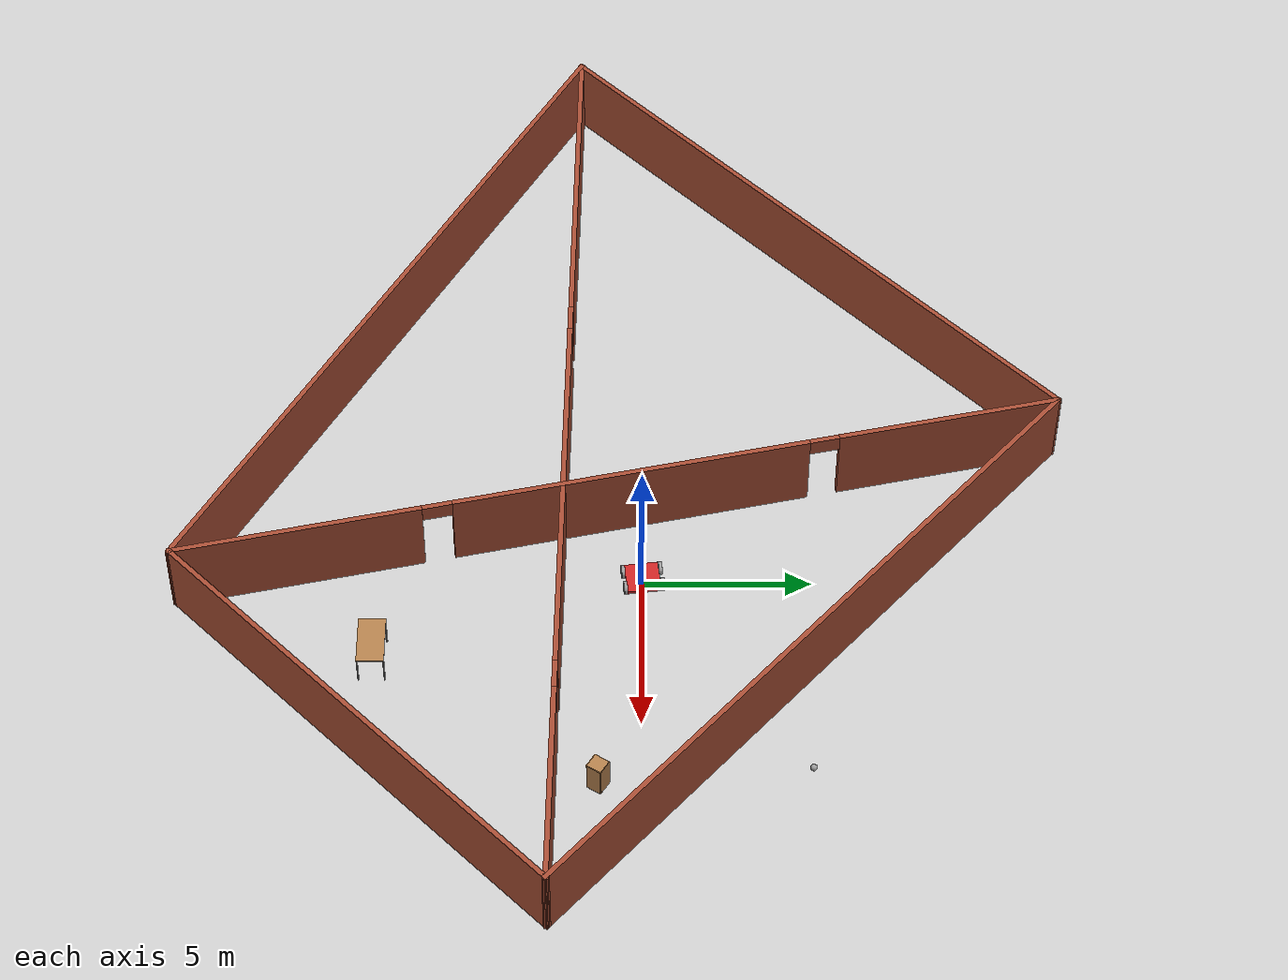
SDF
<sdf version="1.7">
 <world name="default">
  <model name="ground_plane">
   <static>1</static>
   <link name="link">
    <collision name="collision">
     <geometry><plane><normal>0 0 1</normal><size>100 100</size></plane></geometry>
     <surface>
      <contact><collide_bitmask>65535</collide_bitmask></contact>
      <friction><ode><mu>100</mu><mu2>50</mu2></ode></friction>
     </surface>
    </collision>
    <visual name="visual">
     <cast_shadows>0</cast_shadows>
     <geometry><plane><normal>0 0 1</normal><size>100 100</size></plane></geometry>
     <material>
      <script><uri>file://media/materials/scripts/gazebo.material</uri><name>Gazebo/Grey</name></script>
     </material>
    </visual>
   </link>
  </model>
  <model name="model">
   <link name="link_0">
    <inertial>
     <mass>1</mass>
     <inertia>
      <ixx>0.166667</ixx>
      <ixy>0</ixy>
      <ixz>0</ixz>
      <iyy>0.166667</iyy>
      <iyz>0</iyz>
      <izz>0.166667</izz>
     </inertia>
    </inertial>
    <visual name="visual">
     <geometry><box><size>1 1 0.1</size></box></geometry>
     <material>
      <lighting>1</lighting>
      <script><uri>file://media/materials/scripts/gazebo.material</uri><name>Gazebo/Red</name></script>
      <shader type="pixel"><normal_map>__default__</normal_map></shader>
      <ambient>0.3 0.3 0.3 1</ambient>
      <diffuse>0.7 0.7 0.7 1</diffuse>
      <specular>0.01 0.01 0.01 1</specular>
      <emissive>0 0 0 1</emissive>
     </material>
    </visual>
    <collision name="collision">
     <geometry><box><size>1 1 0.1</size></box></geometry>
     <surface>
      <friction>
       <ode><mu>1</mu><mu2>1</mu2><fdir1>0 0 0</fdir1><slip1>0</slip1><slip2>0</slip2></ode>
       <torsional>
        <coefficient>1</coefficient>
        <patch_radius>0</patch_radius>
        <surface_radius>0</surface_radius>
        <use_patch_radius>1</use_patch_radius>
        <ode><slip>0</slip></ode>
       </torsional>
      </friction>
      <bounce><restitution_coefficient>0</restitution_coefficient><threshold>1e+06</threshold></bounce>
      <contact>
       <collide_without_contact>0</collide_without_contact>
       <collide_without_contact_bitmask>1</collide_without_contact_bitmask>
       <collide_bitmask>1</collide_bitmask>
       <ode>
        <soft_cfm>0</soft_cfm>
        <soft_erp>0.2</soft_erp>
        <kp>1e+13</kp>
        <kd>1</kd>
        <max_vel>0.01</max_vel>
        <min_depth>0</min_depth>
       </ode>
       <bullet>
        <split_impulse>1</split_impulse>
        <split_impulse_penetration_threshold>-0.01</split_impulse_penetration_threshold>
        <soft_cfm>0</soft_cfm>
        <soft_erp>0.2</soft_erp>
        <kp>1e+13</kp>
        <kd>1</kd>
       </bullet>
      </contact>
     </surface>
    </collision>
   </link>
   <link name="link_2">
    <pose>0.3 -0.550019 0 1.5707 -0 0</pose>
    <inertial>
     <mass>1</mass>
     <inertia><ixx>0.145833</ixx><ixy>0</ixy><ixz>0</ixz><iyy>0.145833</iyy><iyz>0</iyz><izz>0.125</izz></inertia>
    </inertial>
    <visual name="visual">
     <geometry><cylinder><radius>0.2</radius><length>0.1</length></cylinder></geometry>
     <material>
      <lighting>1</lighting>
      <script><uri>file://media/materials/scripts/gazebo.material</uri><name>Gazebo/Grey</name></script>
      <shader type="pixel"><normal_map>__default__</normal_map></shader>
      <ambient>0.3 0.3 0.3 1</ambient>
      <diffuse>0.7 0.7 0.7 1</diffuse>
      <specular>0.01 0.01 0.01 1</specular>
      <emissive>0 0 0 1</emissive>
     </material>
    </visual>
    <collision name="collision">
     <geometry><cylinder><radius>0.2</radius><length>0.1</length></cylinder></geometry>
     <surface>
      <friction>
       <ode><mu>1</mu><mu2>1</mu2><fdir1>0 0 0</fdir1><slip1>0</slip1><slip2>0</slip2></ode>
       <torsional>
        <coefficient>1</coefficient>
        <patch_radius>0</patch_radius>
        <surface_radius>0</surface_radius>
        <use_patch_radius>1</use_patch_radius>
        <ode><slip>0</slip></ode>
       </torsional>
      </friction>
      <bounce><restitution_coefficient>0</restitution_coefficient><threshold>1e+06</threshold></bounce>
      <contact>
       <collide_without_contact>0</collide_without_contact>
       <collide_without_contact_bitmask>1</collide_without_contact_bitmask>
       <collide_bitmask>1</collide_bitmask>
       <ode>
        <soft_cfm>0</soft_cfm>
        <soft_erp>0.2</soft_erp>
        <kp>1e+13</kp>
        <kd>1</kd>
        <max_vel>0.01</max_vel>
        <min_depth>0</min_depth>
       </ode>
       <bullet>
        <split_impulse>1</split_impulse>
        <split_impulse_penetration_threshold>-0.01</split_impulse_penetration_threshold>
        <soft_cfm>0</soft_cfm>
        <soft_erp>0.2</soft_erp>
        <kp>1e+13</kp>
        <kd>1</kd>
       </bullet>
      </contact>
     </surface>
    </collision>
   </link>
   <link name="link_2_clone">
    <pose>-0.3 -0.550019 0 1.5707 -0 0</pose>
    <inertial>
     <mass>1</mass>
     <inertia><ixx>0.145833</ixx><ixy>0</ixy><ixz>0</ixz><iyy>0.145833</iyy><iyz>0</iyz><izz>0.125</izz></inertia>
    </inertial>
    <visual name="visual">
     <geometry><cylinder><radius>0.2</radius><length>0.1</length></cylinder></geometry>
     <material>
      <lighting>1</lighting>
      <script><uri>file://media/materials/scripts/gazebo.material</uri><name>Gazebo/Grey</name></script>
      <shader type="pixel"><normal_map>__default__</normal_map></shader>
      <ambient>0.3 0.3 0.3 1</ambient>
      <diffuse>0.7 0.7 0.7 1</diffuse>
      <specular>0.01 0.01 0.01 1</specular>
      <emissive>0 0 0 1</emissive>
     </material>
    </visual>
    <collision name="collision">
     <geometry><cylinder><radius>0.2</radius><length>0.1</length></cylinder></geometry>
     <surface>
      <friction>
       <ode><mu>1</mu><mu2>1</mu2><fdir1>0 0 0</fdir1><slip1>0</slip1><slip2>0</slip2></ode>
       <torsional>
        <coefficient>1</coefficient>
        <patch_radius>0</patch_radius>
        <surface_radius>0</surface_radius>
        <use_patch_radius>1</use_patch_radius>
        <ode><slip>0</slip></ode>
       </torsional>
      </friction>
      <bounce><restitution_coefficient>0</restitution_coefficient><threshold>1e+06</threshold></bounce>
      <contact>
       <collide_without_contact>0</collide_without_contact>
       <collide_without_contact_bitmask>1</collide_without_contact_bitmask>
       <collide_bitmask>1</collide_bitmask>
       <ode>
        <soft_cfm>0</soft_cfm>
        <soft_erp>0.2</soft_erp>
        <kp>1e+13</kp>
        <kd>1</kd>
        <max_vel>0.01</max_vel>
        <min_depth>0</min_depth>
       </ode>
       <bullet>
        <split_impulse>1</split_impulse>
        <split_impulse_penetration_threshold>-0.01</split_impulse_penetration_threshold>
        <soft_cfm>0</soft_cfm>
        <soft_erp>0.2</soft_erp>
        <kp>1e+13</kp>
        <kd>1</kd>
       </bullet>
      </contact>
     </surface>
    </collision>
   </link>
   <link name="link_2_clone_0">
    <pose>-0.3 0.550019 0 1.5707 -0 0</pose>
    <inertial>
     <mass>1</mass>
     <inertia><ixx>0.145833</ixx><ixy>0</ixy><ixz>0</ixz><iyy>0.145833</iyy><iyz>0</iyz><izz>0.125</izz></inertia>
    </inertial>
    <visual name="visual">
     <geometry><cylinder><radius>0.2</radius><length>0.1</length></cylinder></geometry>
     <material>
      <lighting>1</lighting>
      <script><uri>file://media/materials/scripts/gazebo.material</uri><name>Gazebo/Grey</name></script>
      <shader type="pixel"><normal_map>__default__</normal_map></shader>
      <ambient>0.3 0.3 0.3 1</ambient>
      <diffuse>0.7 0.7 0.7 1</diffuse>
      <specular>0.01 0.01 0.01 1</specular>
      <emissive>0 0 0 1</emissive>
     </material>
    </visual>
    <collision name="collision">
     <geometry><cylinder><radius>0.2</radius><length>0.1</length></cylinder></geometry>
     <surface>
      <friction>
       <ode><mu>1</mu><mu2>1</mu2><fdir1>0 0 0</fdir1><slip1>0</slip1><slip2>0</slip2></ode>
       <torsional>
        <coefficient>1</coefficient>
        <patch_radius>0</patch_radius>
        <surface_radius>0</surface_radius>
        <use_patch_radius>1</use_patch_radius>
        <ode><slip>0</slip></ode>
       </torsional>
      </friction>
      <bounce><restitution_coefficient>0</restitution_coefficient><threshold>1e+06</threshold></bounce>
      <contact>
       <collide_without_contact>0</collide_without_contact>
       <collide_without_contact_bitmask>1</collide_without_contact_bitmask>
       <collide_bitmask>1</collide_bitmask>
       <ode>
        <soft_cfm>0</soft_cfm>
        <soft_erp>0.2</soft_erp>
        <kp>1e+13</kp>
        <kd>1</kd>
        <max_vel>0.01</max_vel>
        <min_depth>0</min_depth>
       </ode>
       <bullet>
        <split_impulse>1</split_impulse>
        <split_impulse_penetration_threshold>-0.01</split_impulse_penetration_threshold>
        <soft_cfm>0</soft_cfm>
        <soft_erp>0.2</soft_erp>
        <kp>1e+13</kp>
        <kd>1</kd>
       </bullet>
      </contact>
     </surface>
    </collision>
   </link>
   <link name="link_2_clone_1">
    <pose>0.3 0.550019 0 1.5707 -0 0</pose>
    <inertial>
     <mass>1</mass>
     <inertia><ixx>0.145833</ixx><ixy>0</ixy><ixz>0</ixz><iyy>0.145833</iyy><iyz>0</iyz><izz>0.125</izz></inertia>
    </inertial>
    <visual name="visual">
     <geometry><cylinder><radius>0.2</radius><length>0.1</length></cylinder></geometry>
     <material>
      <lighting>1</lighting>
      <script><uri>file://media/materials/scripts/gazebo.material</uri><name>Gazebo/Grey</name></script>
      <shader type="pixel"><normal_map>__default__</normal_map></shader>
      <ambient>0.3 0.3 0.3 1</ambient>
      <diffuse>0.7 0.7 0.7 1</diffuse>
      <specular>0.01 0.01 0.01 1</specular>
      <emissive>0 0 0 1</emissive>
     </material>
    </visual>
    <collision name="collision">
     <geometry><cylinder><radius>0.2</radius><length>0.1</length></cylinder></geometry>
     <surface>
      <friction>
       <ode><mu>1</mu><mu2>1</mu2><fdir1>0 0 0</fdir1><slip1>0</slip1><slip2>0</slip2></ode>
       <torsional>
        <coefficient>1</coefficient>
        <patch_radius>0</patch_radius>
        <surface_radius>0</surface_radius>
        <use_patch_radius>1</use_patch_radius>
        <ode><slip>0</slip></ode>
       </torsional>
      </friction>
      <bounce><restitution_coefficient>0</restitution_coefficient><threshold>1e+06</threshold></bounce>
      <contact>
       <collide_without_contact>0</collide_without_contact>
       <collide_without_contact_bitmask>1</collide_without_contact_bitmask>
       <collide_bitmask>1</collide_bitmask>
       <ode>
        <soft_cfm>0</soft_cfm>
        <soft_erp>0.2</soft_erp>
        <kp>1e+13</kp>
        <kd>1</kd>
        <max_vel>0.01</max_vel>
        <min_depth>0</min_depth>
       </ode>
       <bullet>
        <split_impulse>1</split_impulse>
        <split_impulse_penetration_threshold>-0.01</split_impulse_penetration_threshold>
        <soft_cfm>0</soft_cfm>
        <soft_erp>0.2</soft_erp>
        <kp>1e+13</kp>
        <kd>1</kd>
       </bullet>
      </contact>
     </surface>
    </collision>
   </link>
   <joint name="link_0_JOINT_0" type="revolute">
    <parent>link_0</parent>
    <child>link_2</child>
    <axis>
     <xyz>0 0 1</xyz>
     <limit>
      <lower>-1.79769e+308</lower>
      <upper>1.79769e+308</upper>
      <effort>-1</effort>
      <velocity>-1</velocity>
     </limit>
     <dynamics>
      <spring_reference>0</spring_reference>
      <spring_stiffness>0</spring_stiffness>
      <damping>0</damping>
     </dynamics>
    </axis>
    <physics>
     <ode><limit><cfm>0</cfm><erp>0.2</erp></limit><suspension><cfm>0</cfm><erp>0.2</erp></suspension></ode>
    </physics>
   </joint>
   <joint name="link_0_JOINT_1" type="revolute">
    <parent>link_0</parent>
    <child>link_2_clone_1</child>
    <axis>
     <xyz>0 0 1</xyz>
     <limit>
      <lower>-1.79769e+308</lower>
      <upper>1.79769e+308</upper>
      <effort>-1</effort>
      <velocity>-1</velocity>
     </limit>
     <dynamics>
      <spring_reference>0</spring_reference>
      <spring_stiffness>0</spring_stiffness>
      <damping>0</damping>
     </dynamics>
    </axis>
    <physics>
     <ode><limit><cfm>0</cfm><erp>0.2</erp></limit><suspension><cfm>0</cfm><erp>0.2</erp></suspension></ode>
    </physics>
   </joint>
   <joint name="link_0_JOINT_2" type="revolute">
    <parent>link_0</parent>
    <child>link_2_clone</child>
    <axis>
     <xyz>1 0 0</xyz>
     <limit>
      <lower>-1.79769e+308</lower>
      <upper>1.79769e+308</upper>
      <effort>-1</effort>
      <velocity>-1</velocity>
     </limit>
     <dynamics>
      <spring_reference>0</spring_reference>
      <spring_stiffness>0</spring_stiffness>
      <damping>0</damping>
     </dynamics>
    </axis>
    <physics>
     <ode><limit><cfm>0</cfm><erp>0.2</erp></limit><suspension><cfm>0</cfm><erp>0.2</erp></suspension></ode>
    </physics>
   </joint>
   <joint name="link_0_JOINT_3" type="revolute">
    <parent>link_0</parent>
    <child>link_2_clone_0</child>
    <axis>
     <xyz>0 0 1</xyz>
     <limit>
      <lower>-1.79769e+308</lower>
      <upper>1.79769e+308</upper>
      <effort>-1</effort>
      <velocity>-1</velocity>
     </limit>
     <dynamics>
      <spring_reference>0</spring_reference>
      <spring_stiffness>0</spring_stiffness>
      <damping>0</damping>
     </dynamics>
    </axis>
    <physics>
     <ode><limit><cfm>0</cfm><erp>0.2</erp></limit><suspension><cfm>0</cfm><erp>0.2</erp></suspension></ode>
    </physics>
   </joint>
   <static>0</static>
   <pose>-0.078493 0.033847 0.200003 1e-06 -7e-06 0.129225</pose>
  </model>
  <model name="building">
   <pose>-3.84273 -0.58664 0 0 -0 0</pose>
   <link name="Wall_1">
    <collision name="Wall_1_Collision">
     <geometry><box><size>20.5 0.15 2.5</size></box></geometry>
     <pose>0 0 1.25 0 -0 0</pose>
    </collision>
    <visual name="Wall_1_Visual">
     <pose>0 0 1.25 0 -0 0</pose>
     <geometry><box><size>20.5 0.15 2.5</size></box></geometry>
     <material>
      <script><uri>file://media/materials/scripts/gazebo.material</uri><name>Gazebo/Bricks</name></script>
      <ambient>1 1 1 1</ambient>
     </material>
     <meta><layer>0</layer></meta>
    </visual>
    <pose>-8.43147 5.8375 0 0 0 -2.35619</pose>
   </link>
   <link name="Wall_2">
    <collision name="Wall_2_Collision">
     <geometry><box><size>23.5 0.15 2.5</size></box></geometry>
     <pose>0 0 1.25 0 -0 0</pose>
    </collision>
    <visual name="Wall_2_Visual">
     <pose>0 0 1.25 0 -0 0</pose>
     <geometry><box><size>23.5 0.15 2.5</size></box></geometry>
     <material>
      <script><uri>file://media/materials/scripts/gazebo.material</uri><name>Gazebo/Bricks</name></script>
      <ambient>1 1 1 1</ambient>
     </material>
     <meta><layer>0</layer></meta>
    </visual>
    <pose>-5.51543 -7.19481 0 0 0 -0.523599</pose>
   </link>
   <link name="Wall_3">
    <collision name="Wall_3_Collision">
     <geometry><box><size>15.75 0.15 2.5</size></box></geometry>
     <pose>0 0 1.25 0 -0 0</pose>
    </collision>
    <visual name="Wall_3_Visual">
     <pose>0 0 1.25 0 -0 0</pose>
     <geometry><box><size>15.75 0.15 2.5</size></box></geometry>
     <material>
      <script><uri>file://media/materials/scripts/gazebo.material</uri><name>Gazebo/Bricks</name></script>
      <ambient>1 1 1 1</ambient>
     </material>
     <meta><layer>0</layer></meta>
    </visual>
    <pose>10.1108 -7.51688 0 0 -0 0.785398</pose>
   </link>
   <link name="Wall_4">
    <collision name="Wall_4_Collision">
     <geometry><box><size>22.7414 0.15 2.5</size></box></geometry>
     <pose>0 0 1.25 0 -0 0</pose>
    </collision>
    <visual name="Wall_4_Visual">
     <pose>0 0 1.25 0 -0 0</pose>
     <geometry><box><size>22.7414 0.15 2.5</size></box></geometry>
     <material>
      <script><uri>file://media/materials/scripts/gazebo.material</uri><name>Gazebo/Bricks</name></script>
      <ambient>1 1 1 1</ambient>
     </material>
     <meta><layer>0</layer></meta>
    </visual>
    <pose>7.19481 5.51543 0 0 -0 2.41348</pose>
   </link>
   <link name="Wall_5">
    <pose>1.67938 0 0 0 0 -1.35067</pose>
    <visual name="Wall_5_Visual_0">
     <pose>-10.0114 0 1.25 0 -0 0</pose>
     <geometry><box><size>6.83637 0.15 2.5</size></box></geometry>
     <material>
      <script><uri>file://media/materials/scripts/gazebo.material</uri><name>Gazebo/Bricks</name></script>
      <ambient>1 1 1 1</ambient>
     </material>
     <meta><layer>0</layer></meta>
    </visual>
    <collision name="Wall_5_Collision_0">
     <geometry><box><size>6.83637 0.15 2.5</size></box></geometry>
     <pose>-10.0114 0 1.25 0 -0 0</pose>
    </collision>
    <visual name="Wall_5_Visual_1">
     <pose>-0.313618 0 1.25 0 -0 0</pose>
     <geometry><box><size>10.7591 0.15 2.5</size></box></geometry>
     <material>
      <script><uri>file://media/materials/scripts/gazebo.material</uri><name>Gazebo/Bricks</name></script>
      <ambient>1 1 1 1</ambient>
     </material>
     <meta><layer>0</layer></meta>
    </visual>
    <collision name="Wall_5_Collision_1">
     <geometry><box><size>10.7591 0.15 2.5</size></box></geometry>
     <pose>-0.313618 0 1.25 0 -0 0</pose>
    </collision>
    <visual name="Wall_5_Visual_2">
     <pose>9.69776 0 1.25 0 -0 0</pose>
     <geometry><box><size>7.46361 0.15 2.5</size></box></geometry>
     <material>
      <script><uri>file://media/materials/scripts/gazebo.material</uri><name>Gazebo/Bricks</name></script>
      <ambient>1 1 1 1</ambient>
     </material>
     <meta><layer>0</layer></meta>
    </visual>
    <collision name="Wall_5_Collision_2">
     <geometry><box><size>7.46361 0.15 2.5</size></box></geometry>
     <pose>9.69776 0 1.25 0 -0 0</pose>
    </collision>
    <visual name="Wall_5_Visual_3">
     <pose>-6.14319 0 2.25 0 -0 0</pose>
     <geometry><box><size>0.9 0.15 0.5</size></box></geometry>
     <material>
      <script><uri>file://media/materials/scripts/gazebo.material</uri><name>Gazebo/Bricks</name></script>
      <ambient>1 1 1 1</ambient>
     </material>
     <meta><layer>0</layer></meta>
    </visual>
    <collision name="Wall_5_Collision_3">
     <geometry><box><size>0.9 0.15 0.5</size></box></geometry>
     <pose>-6.14319 0 2.25 0 -0 0</pose>
    </collision>
    <visual name="Wall_5_Visual_4">
     <pose>5.51595 0 2.25 0 -0 0</pose>
     <geometry><box><size>0.9 0.15 0.5</size></box></geometry>
     <material>
      <script><uri>file://media/materials/scripts/gazebo.material</uri><name>Gazebo/Bricks</name></script>
      <ambient>1 1 1 1</ambient>
     </material>
     <meta><layer>0</layer></meta>
    </visual>
    <collision name="Wall_5_Collision_4">
     <geometry><box><size>0.9 0.15 0.5</size></box></geometry>
     <pose>5.51595 0 2.25 0 -0 0</pose>
    </collision>
   </link>
   <link name="Wall_7">
    <pose>1e-06 -1.67938 0 0 0 -0.020608</pose>
    <visual name="Wall_7_Visual_0">
     <pose>-10.3358 0 1.25 0 -0 0</pose>
     <geometry><box><size>10.7375 0.15 2.5</size></box></geometry>
     <material>
      <script><uri>file://media/materials/scripts/gazebo.material</uri><name>Gazebo/Bricks</name></script>
      <ambient>1 1 1 1</ambient>
     </material>
     <meta><layer>0</layer></meta>
    </visual>
    <collision name="Wall_7_Collision_0">
     <geometry><box><size>10.7375 0.15 2.5</size></box></geometry>
     <pose>-10.3358 0 1.25 0 -0 0</pose>
    </collision>
    <visual name="Wall_7_Visual_1">
     <pose>2.20987 0 1.25 0 -0 0</pose>
     <geometry><box><size>12.5539 0.15 2.5</size></box></geometry>
     <material>
      <script><uri>file://media/materials/scripts/gazebo.material</uri><name>Gazebo/Bricks</name></script>
      <ambient>1 1 1 1</ambient>
     </material>
     <meta><layer>0</layer></meta>
    </visual>
    <collision name="Wall_7_Collision_1">
     <geometry><box><size>12.5539 0.15 2.5</size></box></geometry>
     <pose>2.20987 0 1.25 0 -0 0</pose>
    </collision>
    <visual name="Wall_7_Visual_2">
     <pose>12.5457 0 1.25 0 -0 0</pose>
     <geometry><box><size>6.31776 0.15 2.5</size></box></geometry>
     <material>
      <script><uri>file://media/materials/scripts/gazebo.material</uri><name>Gazebo/Bricks</name></script>
      <ambient>1 1 1 1</ambient>
     </material>
     <meta><layer>0</layer></meta>
    </visual>
    <collision name="Wall_7_Collision_2">
     <geometry><box><size>6.31776 0.15 2.5</size></box></geometry>
     <pose>12.5457 0 1.25 0 -0 0</pose>
    </collision>
    <visual name="Wall_7_Visual_3">
     <pose>-4.51709 0 2.25 0 -0 0</pose>
     <geometry><box><size>0.9 0.15 0.5</size></box></geometry>
     <material>
      <script><uri>file://media/materials/scripts/gazebo.material</uri><name>Gazebo/Bricks</name></script>
      <ambient>1 1 1 1</ambient>
     </material>
     <meta><layer>0</layer></meta>
    </visual>
    <collision name="Wall_7_Collision_3">
     <geometry><box><size>0.9 0.15 0.5</size></box></geometry>
     <pose>-4.51709 0 2.25 0 -0 0</pose>
    </collision>
    <visual name="Wall_7_Visual_4">
     <pose>8.93684 0 2.25 0 -0 0</pose>
     <geometry><box><size>0.9 0.15 0.5</size></box></geometry>
     <material>
      <script><uri>file://media/materials/scripts/gazebo.material</uri><name>Gazebo/Bricks</name></script>
      <ambient>1 1 1 1</ambient>
     </material>
     <meta><layer>0</layer></meta>
    </visual>
    <collision name="Wall_7_Collision_4">
     <geometry><box><size>0.9 0.15 0.5</size></box></geometry>
     <pose>8.93684 0 2.25 0 -0 0</pose>
    </collision>
   </link>
   <static>1</static>
  </model>
  <model name="table_0">
   <static>1</static>
   <link name="link">
    <collision name="surface">
     <pose>0 0 1 0 -0 0</pose>
     <geometry><box><size>1.5 0.8 0.03</size></box></geometry>
     <surface><friction><ode><mu>0.6</mu><mu2>0.6</mu2></ode></friction></surface>
    </collision>
    <visual name="visual1">
     <pose>0 0 1 0 -0 0</pose>
     <geometry><box><size>1.5 0.8 0.03</size></box></geometry>
     <material>
      <script><uri>file://media/materials/scripts/gazebo.material</uri><name>Gazebo/Wood</name></script>
     </material>
    </visual>
    <collision name="front_left_leg">
     <pose>0.68 0.38 0.5 0 -0 0</pose>
     <geometry><cylinder><radius>0.02</radius><length>1</length></cylinder></geometry>
    </collision>
    <visual name="front_left_leg">
     <pose>0.68 0.38 0.5 0 -0 0</pose>
     <geometry><cylinder><radius>0.02</radius><length>1</length></cylinder></geometry>
     <material>
      <script><uri>file://media/materials/scripts/gazebo.material</uri><name>Gazebo/Grey</name></script>
     </material>
    </visual>
    <collision name="front_right_leg">
     <pose>0.68 -0.38 0.5 0 -0 0</pose>
     <geometry><cylinder><radius>0.02</radius><length>1</length></cylinder></geometry>
    </collision>
    <visual name="front_right_leg">
     <pose>0.68 -0.38 0.5 0 -0 0</pose>
     <geometry><cylinder><radius>0.02</radius><length>1</length></cylinder></geometry>
     <material>
      <script><uri>file://media/materials/scripts/gazebo.material</uri><name>Gazebo/Grey</name></script>
     </material>
    </visual>
    <collision name="back_right_leg">
     <pose>-0.68 -0.38 0.5 0 -0 0</pose>
     <geometry><cylinder><radius>0.02</radius><length>1</length></cylinder></geometry>
    </collision>
    <visual name="back_right_leg">
     <pose>-0.68 -0.38 0.5 0 -0 0</pose>
     <geometry><cylinder><radius>0.02</radius><length>1</length></cylinder></geometry>
     <material>
      <script><uri>file://media/materials/scripts/gazebo.material</uri><name>Gazebo/Grey</name></script>
     </material>
    </visual>
    <collision name="back_left_leg">
     <pose>-0.68 0.38 0.5 0 -0 0</pose>
     <geometry><cylinder><radius>0.02</radius><length>1</length></cylinder></geometry>
    </collision>
    <visual name="back_left_leg">
     <pose>-0.68 0.38 0.5 0 -0 0</pose>
     <geometry><cylinder><radius>0.02</radius><length>1</length></cylinder></geometry>
     <material>
      <script><uri>file://media/materials/scripts/gazebo.material</uri><name>Gazebo/Grey</name></script>
     </material>
    </visual>
   </link>
   <pose>2.82796 -7.77745 0 0 -0 0</pose>
  </model>
  <model name="cabinet">
   <static>1</static>
   <link name="cabinet_bottom_plate">
    <inertial>
     <pose>0 0 -1 0 -0 0</pose>
     <inertia><ixx>2.05</ixx><ixy>0</ixy><ixz>0</ixz><iyy>2.05</iyy><iyz>0</iyz><izz>2.05</izz></inertia>
     <mass>25</mass>
    </inertial>
    <collision name="cabinet_bottom_plate_geom">
     <pose>0 0 0.01 0 -0 0</pose>
     <geometry><box><size>0.45 0.45 0.02</size></box></geometry>
    </collision>
    <visual name="cabinet_bottom_plate_geom_visual">
     <pose>0 0 0.01 0 -0 0</pose>
     <geometry><box><size>0.45 0.45 0.02</size></box></geometry>
     <material>
      <script><uri>file://media/materials/scripts/gazebo.material</uri><name>Gazebo/Wood</name></script>
     </material>
    </visual>
    <collision name="cabinet_bottom_plate_geom_cabinet_back_plate">
     <pose>0.235 0 0.51 0 -0 0</pose>
     <geometry><box><size>0.02 0.45 1.02</size></box></geometry>
    </collision>
    <visual name="cabinet_bottom_plate_geom_cabinet_back_plate_visual">
     <pose>0.235 0 0.51 0 -0 0</pose>
     <geometry><box><size>0.02 0.45 1.02</size></box></geometry>
     <material>
      <script><uri>file://media/materials/scripts/gazebo.material</uri><name>Gazebo/Wood</name></script>
     </material>
    </visual>
    <collision name="cabinet_bottom_plate_geom_cabinet_left_plate">
     <pose>0 0.235 0.51 0 -0 0</pose>
     <geometry><box><size>0.45 0.02 1.02</size></box></geometry>
    </collision>
    <visual name="cabinet_bottom_plate_geom_cabinet_left_plate_visual">
     <pose>0 0.235 0.51 0 -0 0</pose>
     <geometry><box><size>0.45 0.02 1.02</size></box></geometry>
     <material>
      <script><uri>file://media/materials/scripts/gazebo.material</uri><name>Gazebo/Wood</name></script>
     </material>
    </visual>
    <collision name="cabinet_bottom_plate_geom_cabinet_middle_plate">
     <pose>0 0 0.51 0 -0 0</pose>
     <geometry><box><size>0.45 0.45 0.02</size></box></geometry>
    </collision>
    <visual name="cabinet_bottom_plate_geom_cabinet_middle_plate_visual">
     <pose>0 0 0.51 0 -0 0</pose>
     <geometry><box><size>0.45 0.45 0.02</size></box></geometry>
     <material>
      <script><uri>file://media/materials/scripts/gazebo.material</uri><name>Gazebo/Wood</name></script>
     </material>
    </visual>
    <collision name="cabinet_bottom_plate_geom_cabinet_right_plate">
     <pose>0 -0.235 0.51 0 -0 0</pose>
     <geometry><box><size>0.45 0.02 1.02</size></box></geometry>
    </collision>
    <visual name="cabinet_bottom_plate_geom_cabinet_right_plate_visual">
     <pose>0 -0.235 0.51 0 -0 0</pose>
     <geometry><box><size>0.45 0.02 1.02</size></box></geometry>
     <material>
      <script><uri>file://media/materials/scripts/gazebo.material</uri><name>Gazebo/Wood</name></script>
     </material>
    </visual>
    <collision name="cabinet_bottom_plate_geom_cabinet_top_plate">
     <pose>0 0 1.01 0 -0 0</pose>
     <geometry><box><size>0.45 0.45 0.02</size></box></geometry>
    </collision>
    <visual name="cabinet_bottom_plate_geom_cabinet_top_plate_visual">
     <pose>0 0 1.01 0 -0 0</pose>
     <geometry><box><size>0.45 0.45 0.02</size></box></geometry>
     <material>
      <script><uri>file://media/materials/scripts/gazebo.material</uri><name>Gazebo/Wood</name></script>
     </material>
    </visual>
   </link>
   <pose>7.11839 -1.22812 0 0.002021 -0.003237 -0.558229</pose>
  </model>
  <model name="my_ball">
   <link name="link_0">
    <inertial>
     <mass>1</mass>
     <inertia><ixx>0.1</ixx><ixy>0</ixy><ixz>0</ixz><iyy>0.1</iyy><iyz>0</iyz><izz>0.1</izz></inertia>
    </inertial>
    <visual name="visual">
     <geometry><sphere><radius>0.1</radius></sphere></geometry>
     <material>
      <lighting>1</lighting>
      <script><uri>file://media/materials/scripts/gazebo.material</uri><name>Gazebo/Grey</name></script>
      <shader type="pixel"><normal_map>__default__</normal_map></shader>
      <ambient>1 1 1 1</ambient>
      <diffuse>1 1 1 1</diffuse>
      <specular>1 1 1 1</specular>
      <emissive>1 1 1 1</emissive>
     </material>
    </visual>
    <collision name="collision">
     <geometry><sphere><radius>0.1</radius></sphere></geometry>
     <surface>
      <friction>
       <ode><mu>1</mu><mu2>1</mu2><fdir1>0 0 0</fdir1><slip1>0</slip1><slip2>0</slip2></ode>
       <torsional>
        <coefficient>1</coefficient>
        <patch_radius>0</patch_radius>
        <surface_radius>0</surface_radius>
        <use_patch_radius>1</use_patch_radius>
        <ode><slip>0</slip></ode>
       </torsional>
      </friction>
      <bounce><restitution_coefficient>0</restitution_coefficient><threshold>1e+06</threshold></bounce>
      <contact>
       <collide_without_contact>0</collide_without_contact>
       <collide_without_contact_bitmask>1</collide_without_contact_bitmask>
       <collide_bitmask>1</collide_bitmask>
       <ode>
        <soft_cfm>0</soft_cfm>
        <soft_erp>0.2</soft_erp>
        <kp>1e+13</kp>
        <kd>1</kd>
        <max_vel>0.01</max_vel>
        <min_depth>0</min_depth>
       </ode>
       <bullet>
        <split_impulse>1</split_impulse>
        <split_impulse_penetration_threshold>-0.01</split_impulse_penetration_threshold>
        <soft_cfm>0</soft_cfm>
        <soft_erp>0.2</soft_erp>
        <kp>1e+13</kp>
        <kd>1</kd>
       </bullet>
      </contact>
     </surface>
    </collision>
   </link>
   <static>0</static>
   <pose>6.59629 4.85089 0.1 0 -0 0</pose>
  </model>
 </world>
</sdf>
